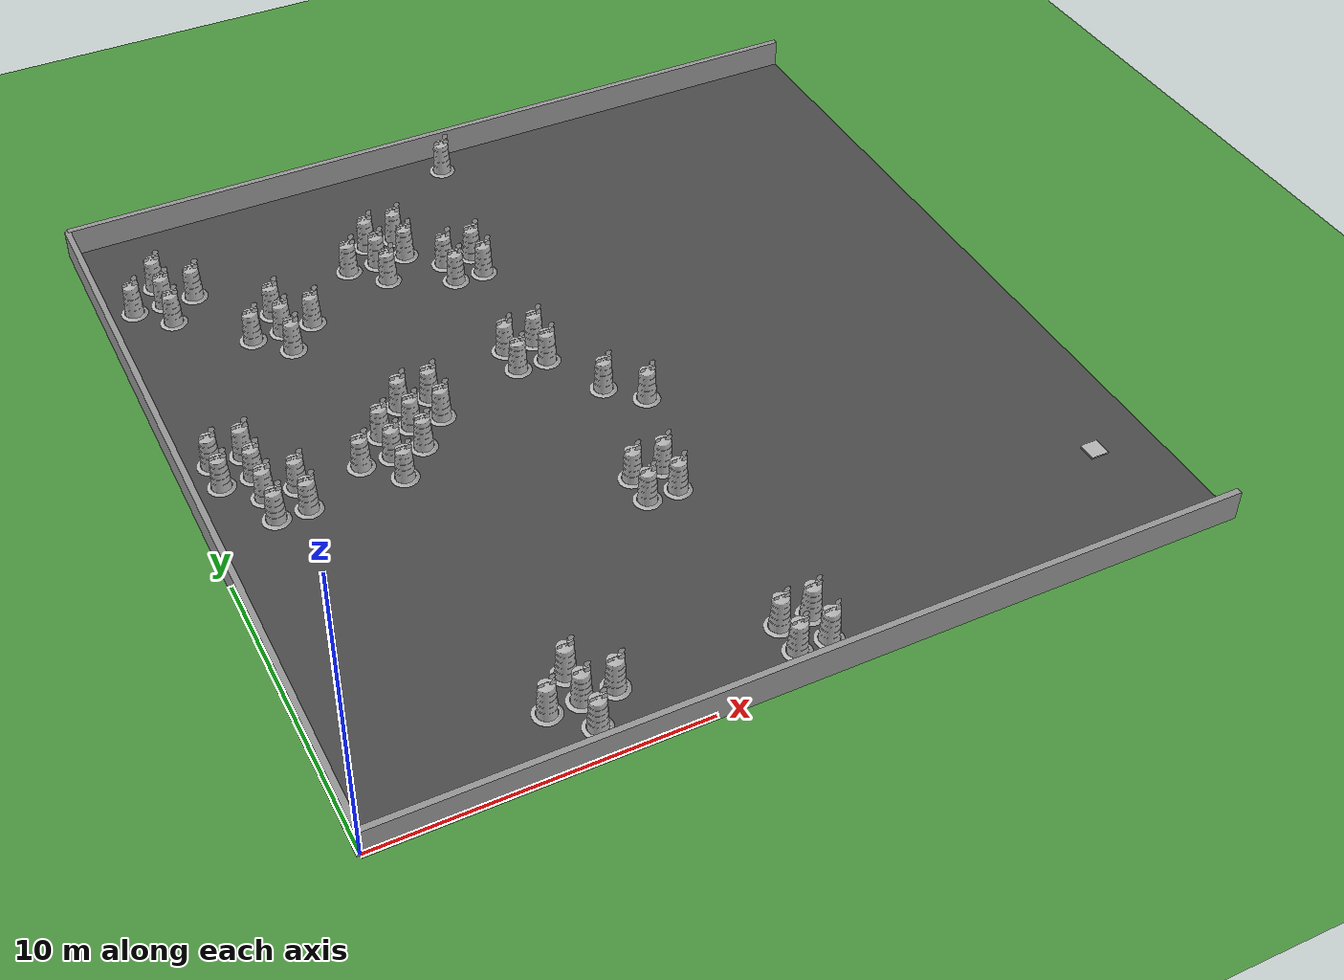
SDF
<sdf version="1.4">
 <world name="default">
  <model name="vrc_driving_terrain">
   <static>1</static>
   <link name="grass_plane">
    <visual name="visual_0">
     <cast_shadows>0</cast_shadows>
     <geometry><plane><normal>0 0 1</normal><size>150 150</size></plane></geometry>
     <material>
      <script>
       <uri>model://vrc_driving_terrain/materials/scripts</uri>
       <uri>model://vrc_driving_terrain/materials/textures</uri>
       <name>vrc/grass</name>
      </script>
     </material>
    </visual>
   </link>
   <pose>0 0 0.01 0 -0 0</pose>
  </model>
  <include><uri>model://ground_plane</uri></include>
  <include><uri>model://sun</uri></include>
  <model name="box_target_green">
   <static>1</static>
   <link name="link">
    <pose>25 4 0 0 0 0</pose>
    <collision name="collision"><geometry><box><size>6 6 2</size></box></geometry></collision>
    <visual name="visual">
     <geometry>
      <mesh><uri>model://box_target_green/meshes/mesh.dae</uri><scale>0.1 0.1 0.1</scale></mesh>
     </geometry>
    </visual>
   </link>
  </model>
  <model name="grey_wall">
   <static>1</static>
   <link name="link">
    <visual name="visual">
     <cast_shadows>0</cast_shadows>
     <geometry><box><size>27 0.2 2</size></box></geometry>
     <material>
      <script>
       <uri>model://grey_wall/materials/scripts</uri>
       <uri>model://grey_wall/materials/textures</uri>
       <name>vrc/grey_wall</name>
      </script>
     </material>
    </visual>
   </link>
   <pose>13.5 0 0 0 0 0</pose>
  </model>
  <model name="grey_wall">
   <static>1</static>
   <link name="link">
    <visual name="visual">
     <cast_shadows>0</cast_shadows>
     <geometry><box><size>27 0.2 2</size></box></geometry>
     <material>
      <script>
       <uri>model://grey_wall/materials/scripts</uri>
       <uri>model://grey_wall/materials/textures</uri>
       <name>vrc/grey_wall</name>
      </script>
     </material>
    </visual>
   </link>
   <pose>0 13.5 0 0 0 1.57079632679</pose>
  </model>
  <model name="grey_wall">
   <static>1</static>
   <link name="link">
    <visual name="visual">
     <cast_shadows>0</cast_shadows>
     <geometry><box><size>27 0.2 2</size></box></geometry>
     <material>
      <script>
       <uri>model://grey_wall/materials/scripts</uri>
       <uri>model://grey_wall/materials/textures</uri>
       <name>vrc/grey_wall</name>
      </script>
     </material>
    </visual>
   </link>
   <pose>13.5 27 0 0 0 3.14159265359</pose>
  </model>
  <model name="asphalt_plane">
   <static>1</static>
   <link name="link">
    <visual name="visual">
     <cast_shadows>0</cast_shadows>
     <geometry><box><size>27 27 0.1</size></box></geometry>
     <material>
      <script>
       <uri>model://asphalt_plane/materials/scripts</uri>
       <uri>model://asphalt_plane/materials/textures</uri>
       <name>vrc/asphalt</name>
      </script>
     </material>
    </visual>
   </link>
   <pose>13.5 13.5 0 0 0 0</pose>
  </model>
  <model name="Construction Barrel">
   <link name="link">
    <collision name="collision">
     <geometry>
      <mesh><uri>model://construction_barrel/meshes/construction_barrel.dae</uri><scale>1 1 1</scale></mesh>
     </geometry>
    </collision>
    <visual name="visual">
     <geometry><mesh><uri>model://construction_barrel/meshes/construction_barrel.dae</uri></mesh></geometry>
    </visual>
   </link>
   <pose>1 14 0 0 0 0</pose>
   <static>1</static>
  </model>
  <model name="Construction Barrel">
   <link name="link">
    <collision name="collision">
     <geometry>
      <mesh><uri>model://construction_barrel/meshes/construction_barrel.dae</uri><scale>1 1 1</scale></mesh>
     </geometry>
    </collision>
    <visual name="visual">
     <geometry><mesh><uri>model://construction_barrel/meshes/construction_barrel.dae</uri></mesh></geometry>
    </visual>
   </link>
   <pose>1 15 0 0 0 0</pose>
   <static>1</static>
  </model>
  <model name="Construction Barrel">
   <link name="link">
    <collision name="collision">
     <geometry>
      <mesh><uri>model://construction_barrel/meshes/construction_barrel.dae</uri><scale>1 1 1</scale></mesh>
     </geometry>
    </collision>
    <visual name="visual">
     <geometry><mesh><uri>model://construction_barrel/meshes/construction_barrel.dae</uri></mesh></geometry>
    </visual>
   </link>
   <pose>1 23 0 0 0 0</pose>
   <static>1</static>
  </model>
  <model name="Construction Barrel">
   <link name="link">
    <collision name="collision">
     <geometry>
      <mesh><uri>model://construction_barrel/meshes/construction_barrel.dae</uri><scale>1 1 1</scale></mesh>
     </geometry>
    </collision>
    <visual name="visual">
     <geometry><mesh><uri>model://construction_barrel/meshes/construction_barrel.dae</uri></mesh></geometry>
    </visual>
   </link>
   <pose>2 12 0 0 0 0</pose>
   <static>1</static>
  </model>
  <model name="Construction Barrel">
   <link name="link">
    <collision name="collision">
     <geometry>
      <mesh><uri>model://construction_barrel/meshes/construction_barrel.dae</uri><scale>1 1 1</scale></mesh>
     </geometry>
    </collision>
    <visual name="visual">
     <geometry><mesh><uri>model://construction_barrel/meshes/construction_barrel.dae</uri></mesh></geometry>
    </visual>
   </link>
   <pose>2 13 0 0 0 0</pose>
   <static>1</static>
  </model>
  <model name="Construction Barrel">
   <link name="link">
    <collision name="collision">
     <geometry>
      <mesh><uri>model://construction_barrel/meshes/construction_barrel.dae</uri><scale>1 1 1</scale></mesh>
     </geometry>
    </collision>
    <visual name="visual">
     <geometry><mesh><uri>model://construction_barrel/meshes/construction_barrel.dae</uri></mesh></geometry>
    </visual>
   </link>
   <pose>2 14 0 0 0 0</pose>
   <static>1</static>
  </model>
  <model name="Construction Barrel">
   <link name="link">
    <collision name="collision">
     <geometry>
      <mesh><uri>model://construction_barrel/meshes/construction_barrel.dae</uri><scale>1 1 1</scale></mesh>
     </geometry>
    </collision>
    <visual name="visual">
     <geometry><mesh><uri>model://construction_barrel/meshes/construction_barrel.dae</uri></mesh></geometry>
    </visual>
   </link>
   <pose>2 15 0 0 0 0</pose>
   <static>1</static>
  </model>
  <model name="Construction Barrel">
   <link name="link">
    <collision name="collision">
     <geometry>
      <mesh><uri>model://construction_barrel/meshes/construction_barrel.dae</uri><scale>1 1 1</scale></mesh>
     </geometry>
    </collision>
    <visual name="visual">
     <geometry><mesh><uri>model://construction_barrel/meshes/construction_barrel.dae</uri></mesh></geometry>
    </visual>
   </link>
   <pose>2 22 0 0 0 0</pose>
   <static>1</static>
  </model>
  <model name="Construction Barrel">
   <link name="link">
    <collision name="collision">
     <geometry>
      <mesh><uri>model://construction_barrel/meshes/construction_barrel.dae</uri><scale>1 1 1</scale></mesh>
     </geometry>
    </collision>
    <visual name="visual">
     <geometry><mesh><uri>model://construction_barrel/meshes/construction_barrel.dae</uri></mesh></geometry>
    </visual>
   </link>
   <pose>2 23 0 0 0 0</pose>
   <static>1</static>
  </model>
  <model name="Construction Barrel">
   <link name="link">
    <collision name="collision">
     <geometry>
      <mesh><uri>model://construction_barrel/meshes/construction_barrel.dae</uri><scale>1 1 1</scale></mesh>
     </geometry>
    </collision>
    <visual name="visual">
     <geometry><mesh><uri>model://construction_barrel/meshes/construction_barrel.dae</uri></mesh></geometry>
    </visual>
   </link>
   <pose>2 24 0 0 0 0</pose>
   <static>1</static>
  </model>
  <model name="Construction Barrel">
   <link name="link">
    <collision name="collision">
     <geometry>
      <mesh><uri>model://construction_barrel/meshes/construction_barrel.dae</uri><scale>1 1 1</scale></mesh>
     </geometry>
    </collision>
    <visual name="visual">
     <geometry><mesh><uri>model://construction_barrel/meshes/construction_barrel.dae</uri></mesh></geometry>
    </visual>
   </link>
   <pose>3 12 0 0 0 0</pose>
   <static>1</static>
  </model>
  <model name="Construction Barrel">
   <link name="link">
    <collision name="collision">
     <geometry>
      <mesh><uri>model://construction_barrel/meshes/construction_barrel.dae</uri><scale>1 1 1</scale></mesh>
     </geometry>
    </collision>
    <visual name="visual">
     <geometry><mesh><uri>model://construction_barrel/meshes/construction_barrel.dae</uri></mesh></geometry>
    </visual>
   </link>
   <pose>3 13 0 0 0 0</pose>
   <static>1</static>
  </model>
  <model name="Construction Barrel">
   <link name="link">
    <collision name="collision">
     <geometry>
      <mesh><uri>model://construction_barrel/meshes/construction_barrel.dae</uri><scale>1 1 1</scale></mesh>
     </geometry>
    </collision>
    <visual name="visual">
     <geometry><mesh><uri>model://construction_barrel/meshes/construction_barrel.dae</uri></mesh></geometry>
    </visual>
   </link>
   <pose>3 23 0 0 0 0</pose>
   <static>1</static>
  </model>
  <model name="Construction Barrel">
   <link name="link">
    <collision name="collision">
     <geometry>
      <mesh><uri>model://construction_barrel/meshes/construction_barrel.dae</uri><scale>1 1 1</scale></mesh>
     </geometry>
    </collision>
    <visual name="visual">
     <geometry><mesh><uri>model://construction_barrel/meshes/construction_barrel.dae</uri></mesh></geometry>
    </visual>
   </link>
   <pose>4 20 0 0 0 0</pose>
   <static>1</static>
  </model>
  <model name="Construction Barrel">
   <link name="link">
    <collision name="collision">
     <geometry>
      <mesh><uri>model://construction_barrel/meshes/construction_barrel.dae</uri><scale>1 1 1</scale></mesh>
     </geometry>
    </collision>
    <visual name="visual">
     <geometry><mesh><uri>model://construction_barrel/meshes/construction_barrel.dae</uri></mesh></geometry>
    </visual>
   </link>
   <pose>5 13 0 0 0 0</pose>
   <static>1</static>
  </model>
  <model name="Construction Barrel">
   <link name="link">
    <collision name="collision">
     <geometry>
      <mesh><uri>model://construction_barrel/meshes/construction_barrel.dae</uri><scale>1 1 1</scale></mesh>
     </geometry>
    </collision>
    <visual name="visual">
     <geometry><mesh><uri>model://construction_barrel/meshes/construction_barrel.dae</uri></mesh></geometry>
    </visual>
   </link>
   <pose>5 19 0 0 0 0</pose>
   <static>1</static>
  </model>
  <model name="Construction Barrel">
   <link name="link">
    <collision name="collision">
     <geometry>
      <mesh><uri>model://construction_barrel/meshes/construction_barrel.dae</uri><scale>1 1 1</scale></mesh>
     </geometry>
    </collision>
    <visual name="visual">
     <geometry><mesh><uri>model://construction_barrel/meshes/construction_barrel.dae</uri></mesh></geometry>
    </visual>
   </link>
   <pose>5 20 0 0 0 0</pose>
   <static>1</static>
  </model>
  <model name="Construction Barrel">
   <link name="link">
    <collision name="collision">
     <geometry>
      <mesh><uri>model://construction_barrel/meshes/construction_barrel.dae</uri><scale>1 1 1</scale></mesh>
     </geometry>
    </collision>
    <visual name="visual">
     <geometry><mesh><uri>model://construction_barrel/meshes/construction_barrel.dae</uri></mesh></geometry>
    </visual>
   </link>
   <pose>5 21 0 0 0 0</pose>
   <static>1</static>
  </model>
  <model name="Construction Barrel">
   <link name="link">
    <collision name="collision">
     <geometry>
      <mesh><uri>model://construction_barrel/meshes/construction_barrel.dae</uri><scale>1 1 1</scale></mesh>
     </geometry>
    </collision>
    <visual name="visual">
     <geometry><mesh><uri>model://construction_barrel/meshes/construction_barrel.dae</uri></mesh></geometry>
    </visual>
   </link>
   <pose>6 2 0 0 0 0</pose>
   <static>1</static>
  </model>
  <model name="Construction Barrel">
   <link name="link">
    <collision name="collision">
     <geometry>
      <mesh><uri>model://construction_barrel/meshes/construction_barrel.dae</uri><scale>1 1 1</scale></mesh>
     </geometry>
    </collision>
    <visual name="visual">
     <geometry><mesh><uri>model://construction_barrel/meshes/construction_barrel.dae</uri></mesh></geometry>
    </visual>
   </link>
   <pose>6 12 0 0 0 0</pose>
   <static>1</static>
  </model>
  <model name="Construction Barrel">
   <link name="link">
    <collision name="collision">
     <geometry>
      <mesh><uri>model://construction_barrel/meshes/construction_barrel.dae</uri><scale>1 1 1</scale></mesh>
     </geometry>
    </collision>
    <visual name="visual">
     <geometry><mesh><uri>model://construction_barrel/meshes/construction_barrel.dae</uri></mesh></geometry>
    </visual>
   </link>
   <pose>6 13 0 0 0 0</pose>
   <static>1</static>
  </model>
  <model name="Construction Barrel">
   <link name="link">
    <collision name="collision">
     <geometry>
      <mesh><uri>model://construction_barrel/meshes/construction_barrel.dae</uri><scale>1 1 1</scale></mesh>
     </geometry>
    </collision>
    <visual name="visual">
     <geometry><mesh><uri>model://construction_barrel/meshes/construction_barrel.dae</uri></mesh></geometry>
    </visual>
   </link>
   <pose>6 14 0 0 0 0</pose>
   <static>1</static>
  </model>
  <model name="Construction Barrel">
   <link name="link">
    <collision name="collision">
     <geometry>
      <mesh><uri>model://construction_barrel/meshes/construction_barrel.dae</uri><scale>1 1 1</scale></mesh>
     </geometry>
    </collision>
    <visual name="visual">
     <geometry><mesh><uri>model://construction_barrel/meshes/construction_barrel.dae</uri></mesh></geometry>
    </visual>
   </link>
   <pose>6 20 0 0 0 0</pose>
   <static>1</static>
  </model>
  <model name="Construction Barrel">
   <link name="link">
    <collision name="collision">
     <geometry>
      <mesh><uri>model://construction_barrel/meshes/construction_barrel.dae</uri><scale>1 1 1</scale></mesh>
     </geometry>
    </collision>
    <visual name="visual">
     <geometry><mesh><uri>model://construction_barrel/meshes/construction_barrel.dae</uri></mesh></geometry>
    </visual>
   </link>
   <pose>7 1 0 0 0 0</pose>
   <static>1</static>
  </model>
  <model name="Construction Barrel">
   <link name="link">
    <collision name="collision">
     <geometry>
      <mesh><uri>model://construction_barrel/meshes/construction_barrel.dae</uri><scale>1 1 1</scale></mesh>
     </geometry>
    </collision>
    <visual name="visual">
     <geometry><mesh><uri>model://construction_barrel/meshes/construction_barrel.dae</uri></mesh></geometry>
    </visual>
   </link>
   <pose>7 2 0 0 0 0</pose>
   <static>1</static>
  </model>
  <model name="Construction Barrel">
   <link name="link">
    <collision name="collision">
     <geometry>
      <mesh><uri>model://construction_barrel/meshes/construction_barrel.dae</uri><scale>1 1 1</scale></mesh>
     </geometry>
    </collision>
    <visual name="visual">
     <geometry><mesh><uri>model://construction_barrel/meshes/construction_barrel.dae</uri></mesh></geometry>
    </visual>
   </link>
   <pose>7 3 0 0 0 0</pose>
   <static>1</static>
  </model>
  <model name="Construction Barrel">
   <link name="link">
    <collision name="collision">
     <geometry>
      <mesh><uri>model://construction_barrel/meshes/construction_barrel.dae</uri><scale>1 1 1</scale></mesh>
     </geometry>
    </collision>
    <visual name="visual">
     <geometry><mesh><uri>model://construction_barrel/meshes/construction_barrel.dae</uri></mesh></geometry>
    </visual>
   </link>
   <pose>7 13 0 0 0 0</pose>
   <static>1</static>
  </model>
  <model name="Construction Barrel">
   <link name="link">
    <collision name="collision">
     <geometry>
      <mesh><uri>model://construction_barrel/meshes/construction_barrel.dae</uri><scale>1 1 1</scale></mesh>
     </geometry>
    </collision>
    <visual name="visual">
     <geometry><mesh><uri>model://construction_barrel/meshes/construction_barrel.dae</uri></mesh></geometry>
    </visual>
   </link>
   <pose>7 14 0 0 0 0</pose>
   <static>1</static>
  </model>
  <model name="Construction Barrel">
   <link name="link">
    <collision name="collision">
     <geometry>
      <mesh><uri>model://construction_barrel/meshes/construction_barrel.dae</uri><scale>1 1 1</scale></mesh>
     </geometry>
    </collision>
    <visual name="visual">
     <geometry><mesh><uri>model://construction_barrel/meshes/construction_barrel.dae</uri></mesh></geometry>
    </visual>
   </link>
   <pose>7 15 0 0 0 0</pose>
   <static>1</static>
  </model>
  <model name="Construction Barrel">
   <link name="link">
    <collision name="collision">
     <geometry>
      <mesh><uri>model://construction_barrel/meshes/construction_barrel.dae</uri><scale>1 1 1</scale></mesh>
     </geometry>
    </collision>
    <visual name="visual">
     <geometry><mesh><uri>model://construction_barrel/meshes/construction_barrel.dae</uri></mesh></geometry>
    </visual>
   </link>
   <pose>8 2 0 0 0 0</pose>
   <static>1</static>
  </model>
  <model name="Construction Barrel">
   <link name="link">
    <collision name="collision">
     <geometry>
      <mesh><uri>model://construction_barrel/meshes/construction_barrel.dae</uri><scale>1 1 1</scale></mesh>
     </geometry>
    </collision>
    <visual name="visual">
     <geometry><mesh><uri>model://construction_barrel/meshes/construction_barrel.dae</uri></mesh></geometry>
    </visual>
   </link>
   <pose>8 14 0 0 0 0</pose>
   <static>1</static>
  </model>
  <model name="Construction Barrel">
   <link name="link">
    <collision name="collision">
     <geometry>
      <mesh><uri>model://construction_barrel/meshes/construction_barrel.dae</uri><scale>1 1 1</scale></mesh>
     </geometry>
    </collision>
    <visual name="visual">
     <geometry><mesh><uri>model://construction_barrel/meshes/construction_barrel.dae</uri></mesh></geometry>
    </visual>
   </link>
   <pose>8 15 0 0 0 0</pose>
   <static>1</static>
  </model>
  <model name="Construction Barrel">
   <link name="link">
    <collision name="collision">
     <geometry>
      <mesh><uri>model://construction_barrel/meshes/construction_barrel.dae</uri><scale>1 1 1</scale></mesh>
     </geometry>
    </collision>
    <visual name="visual">
     <geometry><mesh><uri>model://construction_barrel/meshes/construction_barrel.dae</uri></mesh></geometry>
    </visual>
   </link>
   <pose>8 22 0 0 0 0</pose>
   <static>1</static>
  </model>
  <model name="Construction Barrel">
   <link name="link">
    <collision name="collision">
     <geometry>
      <mesh><uri>model://construction_barrel/meshes/construction_barrel.dae</uri><scale>1 1 1</scale></mesh>
     </geometry>
    </collision>
    <visual name="visual">
     <geometry><mesh><uri>model://construction_barrel/meshes/construction_barrel.dae</uri></mesh></geometry>
    </visual>
   </link>
   <pose>9 21 0 0 0 0</pose>
   <static>1</static>
  </model>
  <model name="Construction Barrel">
   <link name="link">
    <collision name="collision">
     <geometry>
      <mesh><uri>model://construction_barrel/meshes/construction_barrel.dae</uri><scale>1 1 1</scale></mesh>
     </geometry>
    </collision>
    <visual name="visual">
     <geometry><mesh><uri>model://construction_barrel/meshes/construction_barrel.dae</uri></mesh></geometry>
    </visual>
   </link>
   <pose>9 22 0 0 0 0</pose>
   <static>1</static>
  </model>
  <model name="Construction Barrel">
   <link name="link">
    <collision name="collision">
     <geometry>
      <mesh><uri>model://construction_barrel/meshes/construction_barrel.dae</uri><scale>1 1 1</scale></mesh>
     </geometry>
    </collision>
    <visual name="visual">
     <geometry><mesh><uri>model://construction_barrel/meshes/construction_barrel.dae</uri></mesh></geometry>
    </visual>
   </link>
   <pose>9 23 0 0 0 0</pose>
   <static>1</static>
  </model>
  <model name="Construction Barrel">
   <link name="link">
    <collision name="collision">
     <geometry>
      <mesh><uri>model://construction_barrel/meshes/construction_barrel.dae</uri><scale>1 1 1</scale></mesh>
     </geometry>
    </collision>
    <visual name="visual">
     <geometry><mesh><uri>model://construction_barrel/meshes/construction_barrel.dae</uri></mesh></geometry>
    </visual>
   </link>
   <pose>10 22 0 0 0 0</pose>
   <static>1</static>
  </model>
  <model name="Construction Barrel">
   <link name="link">
    <collision name="collision">
     <geometry>
      <mesh><uri>model://construction_barrel/meshes/construction_barrel.dae</uri><scale>1 1 1</scale></mesh>
     </geometry>
    </collision>
    <visual name="visual">
     <geometry><mesh><uri>model://construction_barrel/meshes/construction_barrel.dae</uri></mesh></geometry>
    </visual>
   </link>
   <pose>10 23 0 0 0 0</pose>
   <static>1</static>
  </model>
  <model name="Construction Barrel">
   <link name="link">
    <collision name="collision">
     <geometry>
      <mesh><uri>model://construction_barrel/meshes/construction_barrel.dae</uri><scale>1 1 1</scale></mesh>
     </geometry>
    </collision>
    <visual name="visual">
     <geometry><mesh><uri>model://construction_barrel/meshes/construction_barrel.dae</uri></mesh></geometry>
    </visual>
   </link>
   <pose>11 15 0 0 0 0</pose>
   <static>1</static>
  </model>
  <model name="Construction Barrel">
   <link name="link">
    <collision name="collision">
     <geometry>
      <mesh><uri>model://construction_barrel/meshes/construction_barrel.dae</uri><scale>1 1 1</scale></mesh>
     </geometry>
    </collision>
    <visual name="visual">
     <geometry><mesh><uri>model://construction_barrel/meshes/construction_barrel.dae</uri></mesh></geometry>
    </visual>
   </link>
   <pose>11 16 0 0 0 0</pose>
   <static>1</static>
  </model>
  <model name="Construction Barrel">
   <link name="link">
    <collision name="collision">
     <geometry>
      <mesh><uri>model://construction_barrel/meshes/construction_barrel.dae</uri><scale>1 1 1</scale></mesh>
     </geometry>
    </collision>
    <visual name="visual">
     <geometry><mesh><uri>model://construction_barrel/meshes/construction_barrel.dae</uri></mesh></geometry>
    </visual>
   </link>
   <pose>11 20 0 0 0 0</pose>
   <static>1</static>
  </model>
  <model name="Construction Barrel">
   <link name="link">
    <collision name="collision">
     <geometry>
      <mesh><uri>model://construction_barrel/meshes/construction_barrel.dae</uri><scale>1 1 1</scale></mesh>
     </geometry>
    </collision>
    <visual name="visual">
     <geometry><mesh><uri>model://construction_barrel/meshes/construction_barrel.dae</uri></mesh></geometry>
    </visual>
   </link>
   <pose>11 21 0 0 0 0</pose>
   <static>1</static>
  </model>
  <model name="Construction Barrel">
   <link name="link">
    <collision name="collision">
     <geometry>
      <mesh><uri>model://construction_barrel/meshes/construction_barrel.dae</uri><scale>1 1 1</scale></mesh>
     </geometry>
    </collision>
    <visual name="visual">
     <geometry><mesh><uri>model://construction_barrel/meshes/construction_barrel.dae</uri></mesh></geometry>
    </visual>
   </link>
   <pose>12 8 0 0 0 0</pose>
   <static>1</static>
  </model>
  <model name="Construction Barrel">
   <link name="link">
    <collision name="collision">
     <geometry>
      <mesh><uri>model://construction_barrel/meshes/construction_barrel.dae</uri><scale>1 1 1</scale></mesh>
     </geometry>
    </collision>
    <visual name="visual">
     <geometry><mesh><uri>model://construction_barrel/meshes/construction_barrel.dae</uri></mesh></geometry>
    </visual>
   </link>
   <pose>12 9 0 0 0 0</pose>
   <static>1</static>
  </model>
  <model name="Construction Barrel">
   <link name="link">
    <collision name="collision">
     <geometry>
      <mesh><uri>model://construction_barrel/meshes/construction_barrel.dae</uri><scale>1 1 1</scale></mesh>
     </geometry>
    </collision>
    <visual name="visual">
     <geometry><mesh><uri>model://construction_barrel/meshes/construction_barrel.dae</uri></mesh></geometry>
    </visual>
   </link>
   <pose>12 15 0 0 0 0</pose>
   <static>1</static>
  </model>
  <model name="Construction Barrel">
   <link name="link">
    <collision name="collision">
     <geometry>
      <mesh><uri>model://construction_barrel/meshes/construction_barrel.dae</uri><scale>1 1 1</scale></mesh>
     </geometry>
    </collision>
    <visual name="visual">
     <geometry><mesh><uri>model://construction_barrel/meshes/construction_barrel.dae</uri></mesh></geometry>
    </visual>
   </link>
   <pose>12 16 0 0 0 0</pose>
   <static>1</static>
  </model>
  <model name="Construction Barrel">
   <link name="link">
    <collision name="collision">
     <geometry>
      <mesh><uri>model://construction_barrel/meshes/construction_barrel.dae</uri><scale>1 1 1</scale></mesh>
     </geometry>
    </collision>
    <visual name="visual">
     <geometry><mesh><uri>model://construction_barrel/meshes/construction_barrel.dae</uri></mesh></geometry>
    </visual>
   </link>
   <pose>12 20 0 0 0 0</pose>
   <static>1</static>
  </model>
  <model name="Construction Barrel">
   <link name="link">
    <collision name="collision">
     <geometry>
      <mesh><uri>model://construction_barrel/meshes/construction_barrel.dae</uri><scale>1 1 1</scale></mesh>
     </geometry>
    </collision>
    <visual name="visual">
     <geometry><mesh><uri>model://construction_barrel/meshes/construction_barrel.dae</uri></mesh></geometry>
    </visual>
   </link>
   <pose>12 21 0 0 0 0</pose>
   <static>1</static>
  </model>
  <model name="Construction Barrel">
   <link name="link">
    <collision name="collision">
     <geometry>
      <mesh><uri>model://construction_barrel/meshes/construction_barrel.dae</uri><scale>1 1 1</scale></mesh>
     </geometry>
    </collision>
    <visual name="visual">
     <geometry><mesh><uri>model://construction_barrel/meshes/construction_barrel.dae</uri></mesh></geometry>
    </visual>
   </link>
   <pose>13 1 0 0 0 0</pose>
   <static>1</static>
  </model>
  <model name="Construction Barrel">
   <link name="link">
    <collision name="collision">
     <geometry>
      <mesh><uri>model://construction_barrel/meshes/construction_barrel.dae</uri><scale>1 1 1</scale></mesh>
     </geometry>
    </collision>
    <visual name="visual">
     <geometry><mesh><uri>model://construction_barrel/meshes/construction_barrel.dae</uri></mesh></geometry>
    </visual>
   </link>
   <pose>13 2 0 0 0 0</pose>
   <static>1</static>
  </model>
  <model name="Construction Barrel">
   <link name="link">
    <collision name="collision">
     <geometry>
      <mesh><uri>model://construction_barrel/meshes/construction_barrel.dae</uri><scale>1 1 1</scale></mesh>
     </geometry>
    </collision>
    <visual name="visual">
     <geometry><mesh><uri>model://construction_barrel/meshes/construction_barrel.dae</uri></mesh></geometry>
    </visual>
   </link>
   <pose>13 8 0 0 0 0</pose>
   <static>1</static>
  </model>
  <model name="Construction Barrel">
   <link name="link">
    <collision name="collision">
     <geometry>
      <mesh><uri>model://construction_barrel/meshes/construction_barrel.dae</uri><scale>1 1 1</scale></mesh>
     </geometry>
    </collision>
    <visual name="visual">
     <geometry><mesh><uri>model://construction_barrel/meshes/construction_barrel.dae</uri></mesh></geometry>
    </visual>
   </link>
   <pose>13 9 0 0 0 0</pose>
   <static>1</static>
  </model>
  <model name="Construction Barrel">
   <link name="link">
    <collision name="collision">
     <geometry>
      <mesh><uri>model://construction_barrel/meshes/construction_barrel.dae</uri><scale>1 1 1</scale></mesh>
     </geometry>
    </collision>
    <visual name="visual">
     <geometry><mesh><uri>model://construction_barrel/meshes/construction_barrel.dae</uri></mesh></geometry>
    </visual>
   </link>
   <pose>13 13 0 0 0 0</pose>
   <static>1</static>
  </model>
  <model name="Construction Barrel">
   <link name="link">
    <collision name="collision">
     <geometry>
      <mesh><uri>model://construction_barrel/meshes/construction_barrel.dae</uri><scale>1 1 1</scale></mesh>
     </geometry>
    </collision>
    <visual name="visual">
     <geometry><mesh><uri>model://construction_barrel/meshes/construction_barrel.dae</uri></mesh></geometry>
    </visual>
   </link>
   <pose>13 26 0 0 0 0</pose>
   <static>1</static>
  </model>
  <model name="Construction Barrel">
   <link name="link">
    <collision name="collision">
     <geometry>
      <mesh><uri>model://construction_barrel/meshes/construction_barrel.dae</uri><scale>1 1 1</scale></mesh>
     </geometry>
    </collision>
    <visual name="visual">
     <geometry><mesh><uri>model://construction_barrel/meshes/construction_barrel.dae</uri></mesh></geometry>
    </visual>
   </link>
   <pose>14 1 0 0 0 0</pose>
   <static>1</static>
  </model>
  <model name="Construction Barrel">
   <link name="link">
    <collision name="collision">
     <geometry>
      <mesh><uri>model://construction_barrel/meshes/construction_barrel.dae</uri><scale>1 1 1</scale></mesh>
     </geometry>
    </collision>
    <visual name="visual">
     <geometry><mesh><uri>model://construction_barrel/meshes/construction_barrel.dae</uri></mesh></geometry>
    </visual>
   </link>
   <pose>14 2 0 0 0 0</pose>
   <static>1</static>
  </model>
  <model name="Construction Barrel">
   <link name="link">
    <collision name="collision">
     <geometry>
      <mesh><uri>model://construction_barrel/meshes/construction_barrel.dae</uri><scale>1 1 1</scale></mesh>
     </geometry>
    </collision>
    <visual name="visual">
     <geometry><mesh><uri>model://construction_barrel/meshes/construction_barrel.dae</uri></mesh></geometry>
    </visual>
   </link>
   <pose>14 12 0 0 0 0</pose>
   <static>1</static>
  </model>
 </world>
</sdf>
